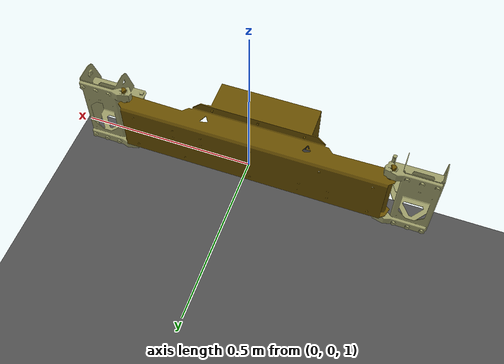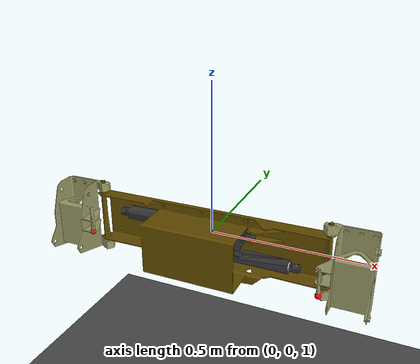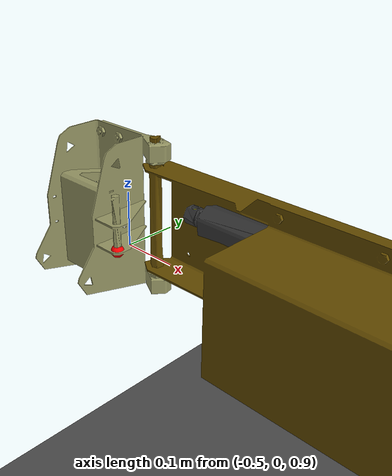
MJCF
<mujoco model="scene">

    <include file="LONGBOW.xml" />

    <visual>
        <headlight diffuse="0.6 0.6 0.6" ambient="0.3 0.3 0.3" specular="0 0 0" />
        <rgba haze="0.15 0.25 0.35 1" />
        <global offwidth="2560" offheight="1440" elevation="-5" azimuth="-120"/>
    </visual>

    <asset>
        <texture type="skybox" builtin="gradient" rgb1="0.3 0.5 0.7" rgb2="0 0 0" width="512" height="3072" />
    </asset>

    <asset>
        <!-- Base concrete texture with noise -->
        <texture name="concrete_base"
                type="2d"
                builtin="flat"
                height="1024"
                width="1024"
                rgb1="0.62 0.62 0.67"
                rgb2="0.78 0.78 0.83"
                mark="random"
                markrgb="0.25 0.25 0.3"/>

        <!-- Main cement floor material -->
        <material name="cement_floor"
                texture="concrete_base"
                specular="0.01"
                shininess="0.00"
                reflectance="0.00"/>
    </asset>

    <worldbody>
        <light pos="0 0 3.5" dir="0 0 -1" directional="true" />
    </worldbody>

</mujoco>

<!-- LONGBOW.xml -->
<mujoco model="longbow">
    <compiler angle="radian" meshdir="assets" autolimits="true"/>

    <option noslip_iterations="10" noslip_tolerance="1e-6"/>

    <option>
        <flag gravity="enable"/>
    </option>

    <!-- Enhanced no-slip solver -->
    <option timestep="0.005"
            iterations="20"
            tolerance="1e-12"
            solver="Newton"
            jacobian="dense"
            noslip_iterations="10"
            noslip_tolerance="1e-6"/>

    <default>
        <default class="longbow">
            <joint frictionloss="0.1" armature="0.005"/>
            <position kp="50" dampratio="1"/>

            <default class="body">
                <geom type="mesh" contype="1" conaffinity="0" group="1"/>
            </default>

            <default class="hits-ground-not-body">
                <geom type="mesh" contype="1" conaffinity="0" group="1"/>
            </default>

            <default class="shaft">
                <geom type="mesh" contype="0" conaffinity="0" group="2"/>
            </default>

            <!-- Visual geom only -->
            <default class="visual-only">
                <geom type="mesh" contype="0" conaffinity="0" group="2"/>
            </default>

            <default class="tires-visual">
                <geom type="mesh" contype="0" conaffinity="0" group="2"/>
            </default>
            <default class="tires-collision">
                <geom type="mesh" contype="2" conaffinity="2" group="2"/>
            </default>

        </default>
    </default>

    <asset>
        <!-- Vehicle Materials  -->
        <mesh name="chassis_mesh" file="CHASSIS.stl"/>
        <mesh name="right_shoulder_mesh" file="RIGHT-SHOULDER.stl"/>
        <mesh name="left_shoulder_mesh" file="LEFT-SHOULDER.stl"/>
        <mesh name="forearm_slider_frame" file="FOREARM-SLIDER.stl"/>
        <material name="vehicle_material" rgba="0.4 0.3 0.0 1"/>
        <material name="mast_material" rgba="0.1 0.1 0.1 1"/>
        <material name="lift_material" rgba="0.15 0.15 0.15 1"/>
        <material name="fork_lift_material" rgba="0.2 0.2 0.2 1"/>
        <material name="forks_tilter_material" rgba="0.3 0.3 0.3 1"/>
        <material name="fork_tines_material" rgba="0.1 0.1 0.1 1"/>
        <material name="tiller_material" rgba="0.1 0.1 0.1 1"/>
        <material name="roller_material" rgba="0.6 0.6 0.4 1"/>
        <material name="shaft_material" rgba="0.2 0.2 0.2 1"/>
        <material name="wheel_material" rgba="0.2 0.2 0.2 1"/>
        <material name="wheel_collision_material" rgba="0.8 0.0 0.0 1"/>

        <!-- Ground Materials  -->
        <texture type="2d" name="groundplane"
            builtin="checker" mark="edge" rgb1="0.2 0.2 0.2" rgb2="0.4 0.4 0.4"
            markrgb="0.8 0.8 0.8" width="300" height="300" />
        <material name="groundplane" texture="groundplane" texuniform="true" texrepeat="5 5"
            reflectance="0.001"/>
    </asset>

    <worldbody>

        <!-- Ground -->
        <geom name="ground" size="0 0 0.1" pos="0 0 0" type="plane"
            material="groundplane" contype="1" conaffinity="3" group="0"/>

        <!-- LONGBOW -->
        <body name="longbow-chassis" pos="0 0 1" quat="1 0 0 0" childclass="longbow">

            <geom class="body" type="mesh" mesh="chassis_mesh"
                pos="0 0 0" quat="1 0 0 0" material="vehicle_material"/>

            <!-- RIGHT SHOULDER -->
            <body name="longbow_right_shoulder" pos="-0.393700 -0.034925 0.092075" quat="1 0 0 0">
                <joint axis="0 0 1" name="revolute_right_shoulder" type="hinge"
                    ref="0.0"
                    damping="1" frictionloss="0.1"/>
                <geom class="body" type="mesh" mesh="right_shoulder_mesh"
                    material="roller_material"/>

                <!-- Slider body - can move along the slot axis -->
                <body name="longbow_right_shoulder_slot_slider" pos="0.005312 -0.085725 -0.115087">
                    <joint name="longbow_right_shoulder_slot_slide" type="slide"
                        axis="0 0 1" range="-0.5 0.5"/>
                    <site name="longbow_right_shoulder_slot_point"
                        pos="0 0 0"/>
                    <!-- Small visual for the pin in slot -->
                    <geom class="body" type="sphere" size="0.01" rgba="1 0 0 1"/>
                </body>
            </body>

            <!-- RIGHT SHOULDER ACTUATOR -->
            <body name="longbow_right_shoulder_actuator_base"
                pos="0.152400 -0.046355 0.038418" quat="0 -0.7071067 0 0.7071067">
                <!-- Actuator housing -->
                <geom class="body" type="mesh" mesh="forearm_slider_frame"
                    pos="0 0 0" quat="0.7071067 0 0.7071067 0" material="wheel_material"/>
                <joint axis="1 0 0" name="longbow_right_shoulder_base_hinge" type="hinge"
                    ref="0.0"
                    damping="0" frictionloss="0"/>
                <!-- Sliding shaft -->
                <body name="longbow_right_shoulder_actuator_shaft" pos="0 0 0">
                    <joint name="longbow_right_shoulder_linear_joint"
                        type="slide" axis="0 0 1"
                        range="0.0 0.19"
                        damping="100" armature="0"/>
                    <geom class="body" name="longbow_right_shoulder_actuator_shaft_geom"
                        type="cylinder" size="0.015 0.117186"
                        pos="0 0 0.317784" rgba="0.7 0.7 0.7 1"/>
                    <!-- End effector / attachment point -->
                    <site name="longbow_right_shoulder_actuator_shaft_tip" pos="0 0 0.454098"/>  <!-- Connection point on shaft -->
                    <geom class="body" type="sphere" size="0.01" pos="0 0 0.454098" rgba="1 1 0 1"/>
                </body>
            </body>

            <!-- LEFT SHOULDER -->
            <body name="longbow_left_shoulder" pos="0.393700 -0.034925 0.092075" quat="1 0 0 0">
                <joint axis="0 0 1" name="revolute_left_shoulder" type="hinge"
                    ref="0.0"
                    damping="1" frictionloss="0.1"/>
                <geom class="body" type="mesh" mesh="left_shoulder_mesh"
                    material="roller_material"/>

                <!-- Slider body - can move along the slot axis -->
                <body name="longbow_left_shoulder_slot_slider" pos="-0.005312 -0.085725 -0.158267">
                    <joint name="longbow_left_shoulder_slot_slide" type="slide"
                        axis="0 0 1" range="-0.5 0.5"/>
                    <site name="longbow_left_shoulder_slot_point"
                        pos="0 0 0"/>
                    <!-- Small visual for the pin in slot -->
                    <geom class="body" type="sphere" size="0.01" rgba="1 0 0 1"/>
                </body>
            </body>

            <!-- LEFT SHOULDER ACTUATOR -->
            <body name="longbow_left_shoulder_actuator_base"
                pos="-0.152400 -0.046355 -0.038418" quat="0 0.7071067 0 0.7071067">
                <!-- Actuator housing -->
                <geom class="body" type="mesh" mesh="forearm_slider_frame"
                    pos="0 0 0" quat="0.7071067 0 0.7071067 0" material="wheel_material"/>
                <joint axis="1 0 0" name="longbow_left_shoulder_base_hinge" type="hinge"
                    ref="0.0"
                    damping="0" frictionloss="0"/>
                <!-- Sliding shaft -->
                <body name="longbow_left_shoulder_actuator_shaft" pos="0 0 0">
                    <joint name="longbow_left_shoulder_linear_joint"
                        type="slide" axis="0 0 1"
                        range="0.0 0.19"
                        damping="100" armature="0"/>
                    <geom class="body" name="longbow_left_shoulder_actuator_shaft_geom"
                        type="cylinder" size="0.015 0.117186"
                        pos="0 0 0.317784" rgba="0.7 0.7 0.7 1"/>
                    <!-- End effector / attachment point -->
                    <site name="longbow_left_shoulder_actuator_shaft_tip" pos="0 0 0.454098"/>  <!-- Connection point on shaft -->
                    <geom class="body" type="sphere" size="0.01" pos="0 0 0.454098" rgba="1 1 0 1"/>
                </body>
            </body>

        </body>

    </worldbody>

    <!-- Connect shaft tip to the slider (which can move along slot axis) -->
    <equality>

        <connect name="longbow_right_shoulder_actuator_connection"
            site1="longbow_right_shoulder_actuator_shaft_tip"
            site2="longbow_right_shoulder_slot_point"/>

        <connect name="longbow_left_shoulder_actuator_connection"
            site1="longbow_left_shoulder_actuator_shaft_tip"
            site2="longbow_left_shoulder_slot_point"/>

    </equality>

    <actuator>

        <!-- Position control - set target extension length -->
        <position name="shoulder_rt"
            joint="longbow_right_shoulder_linear_joint"
            kp="5000" ctrlrange="0 0.19"/>

        <position name="shoulder_lf"
            joint="longbow_left_shoulder_linear_joint"
            kp="5000" ctrlrange="0 0.19"/>

        <!-- OR use velocity control -->
    </actuator>

    <sensor>
        <jointpos name="extension_sensor" joint="longbow_right_shoulder_linear_joint"/>
        <actuatorfrc name="force_sensor" actuator="shoulder_rt"/>
    </sensor>

</mujoco>
